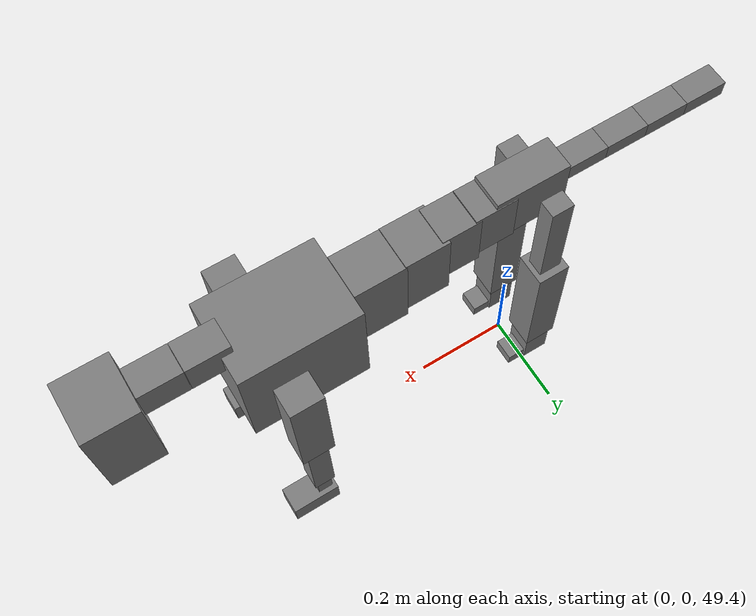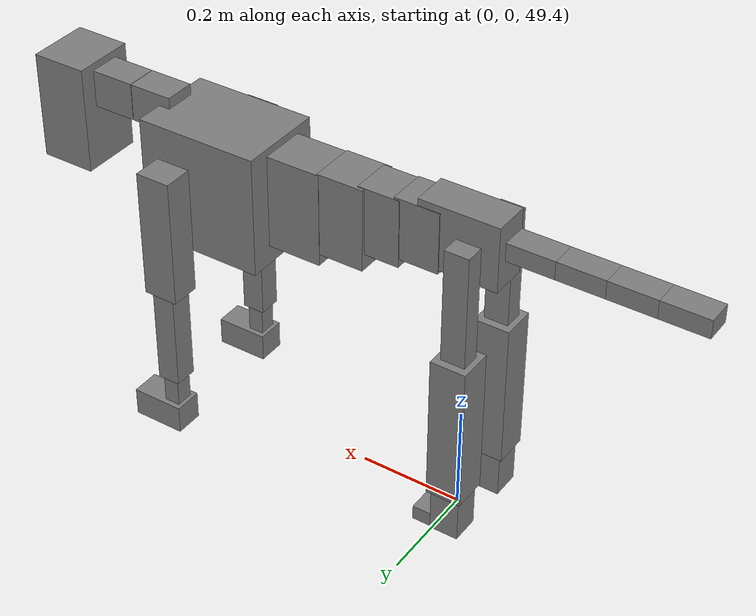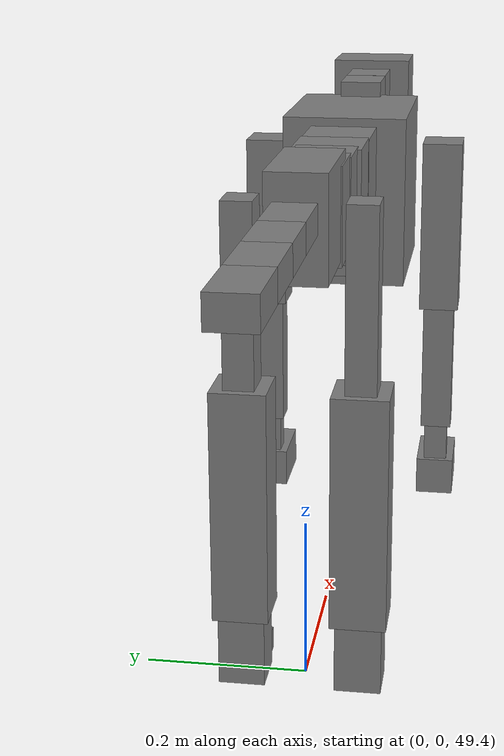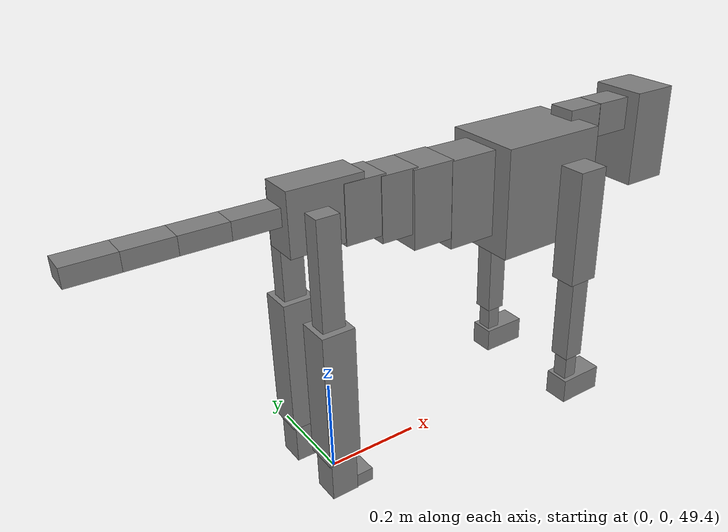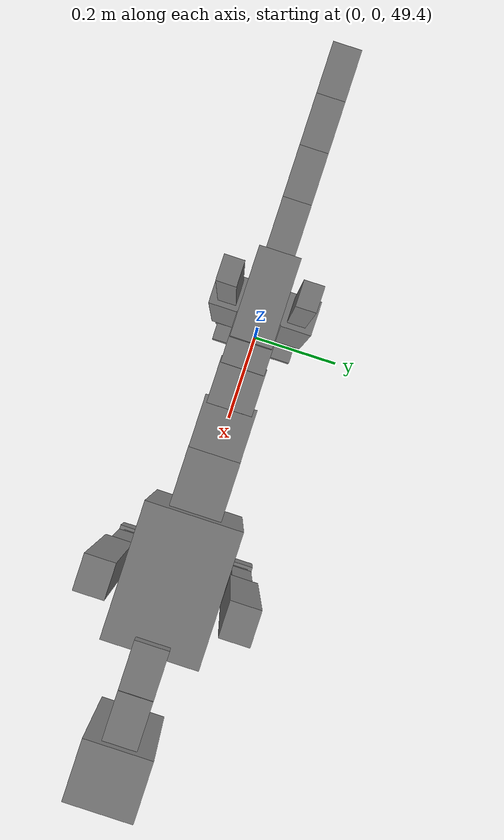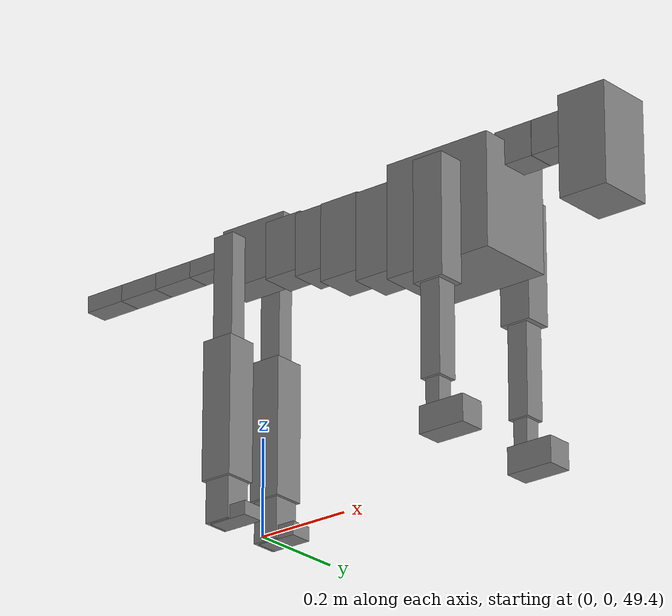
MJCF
<mujoco model="dog">

    <default>
        <joint armature="0.02" stiffness="1" damping="0.2" limited="true"/>
        <geom condim="3" friction="1 0.05 0.05" margin="0.01"/>
        <motor ctrllimited="true" ctrlrange="-1.0 1.0" forcelimited="true" gear="50"/>
    </default>

    <compiler inertiafromgeom="true" angle="radian"/>

    <option timestep="0.016" iterations="50" tolerance="1e-10" solver="Newton" jacobian="dense" cone="pyramidal"/>

    <size nconmax="20000" njmax="60000" nstack="5000000"/>
    <visual>
        <map force="0.1" zfar="30"/>
        <rgba haze="0.15 0.25 0.35 1"/>
        <quality shadowsize="2048"/>
        <global offwidth="800" offheight="800"/>
    </visual>

    <asset>
        <texture type="skybox" builtin="gradient" rgb1="0.3 0.5 0.7" rgb2="0 0 0" width="512" height="512"/>
        <texture name="texplane" type="2d" builtin="checker" rgb1=".2 .3 .4" rgb2=".1 0.15 0.2" width="512" height="512"
                 mark="cross" markrgb=".8 .8 .8"/>
        <texture name="texgeom" type="cube" builtin="flat" mark="cross" width="127" height="1278" rgb1="0.8 0.6 0.4"
                 rgb2="0.8 0.6 0.4" markrgb="1 1 1" random="0.01"/>

        <material name="matplane" reflectance="0.3" texture="texplane" texrepeat="1 1" texuniform="true"/>
        <material name="matgeom" texture="texgeom" texuniform="true" rgba="0.8 0.6 .4 1"/>
    </asset>

    <worldbody>
        <geom name="floor" pos="0 0 0" size="0 0 .25" type="plane" material="matplane" condim="3"/>

        <light directional="false" diffuse=".2 .2 .2" specular="0 0 0" pos="0 0 5" dir="0 0 -1" castshadow="false"/>
        <light mode="targetbodycom" target="torso" directional="false" diffuse=".8 .8 .8" specular="0.3 0.3 0.3"
               pos="0 0 4.0" dir="0 0 -1"/>

        <body name="root" pos="0 0 50">
            <freejoint name="root_1"/>
            <geom type="box" pos="0 0 -0.02" size="0.0774  0.0358  0.063" density="2030"/>

            <body name="spine1" pos="0.054 0 0">
                <joint name="spine1_y" axis="0 1 0" range="0 0.7" limited="true"/>
                <geom type="box" pos="0.02375 0 -0.03" size="0.04375  0.0375  0.05985" density="2030"/>

                <body name="spine2" pos="0.0612 0 0">
                    <joint name="spine2_y" axis="0 1 0" range="-0.15 0.15" limited="true"/>
                    <geom type="box" pos="0.03555  0  -0.04" size="0.04055  0.039  0.06615" density="2030"/>

                    <body name="spine3" pos="0.0730 0 0">
                        <joint name="spine3_y" axis="0 1 0" range="-0.15 0.15" limited="true"/>
                        <geom type="box" pos="0.03555  0  -0.057" size="0.04555  0.0445  0.081" density="2030"/>

                        <body name="spine4" pos="0.0780 0 0">
                            <joint name="spine4_y" axis="0 1 0" range="-0.15 0.15" limited="true"/>
                            <geom type="box" pos="0.05265  0  -0.07" size="0.05265  0.045  0.09135" density="2030"/>

                            <body name="torso" pos="0.1082 0 0">
                                <joint name="torso_y" axis="0 1 0" range="-0.15 0.15" limited="true"/>
                                <geom type="box" pos="0.11925  0  -0.085" size="0.11925  0.085  0.11745"
                                      density="2030"/>

                                <body name="neck1" pos="0.2160  0   0.0180">
                                    <joint name="neck1_y" axis="0 1 0" range="-1.2  -1" limited="true"/>
                                    <geom type="box" pos="0.0423  0  0" size="0.0423  0.03  0.036" density="2325"/>

                                    <body name="neck2" pos="0.0853  0  0">
                                        <joint name="neck2_y" axis="0 1 0" range="0.1  0" limited="true"/>
                                        <geom type="box" pos="0.0423  0  0" size="0.0423  0.03  0.036" density="2325"/>

                                        <body name="head" pos="0.0853  0  0">
                                            <joint name="head_y" axis="0 1 0" range="-0.3  -0.2" limited="true"/>
                                            <geom type="box" pos="0.0531  0  -0.055" size="0.0531  0.06  0.1044"
                                                  density="4030"/>

                                        </body>
                                    </body>
                                </body>

                                <body name="front_shoulder" pos="0.156  0   -0.0480">
                                    <joint name="front_shoulder_y" axis="0 1 0" range="-1 1.5" limited="true"/>
                                    <geom type="box" pos="0 0.13 -0.0981" size="0.0335  0.0286  0.1248" density="1158"/>
                                    <geom type="box" pos="0 -0.13 -0.0981" size="0.0335  0.0286  0.1248"
                                          density="1158"/>

                                    <body name="front_elbow" pos="0  0  -0.1963">
                                        <joint name="front_elbow_y" axis="0 1 0" range="-2 0" limited="true"/>
                                        <geom type="box" pos="0 0.13 -0.1086" size="0.0220  0.0225  0.1086"
                                              density="1081"/>
                                        <geom type="box" pos="0 -0.13 -0.1086" size="0.0220  0.0225  0.1086"
                                              density="1081"/>

                                        <body name="front_wrist" pos="0  0  -0.2172">
                                            <joint name="front_wrist_y" axis="0 1 0" range="-0.2 0" limited="true"/>
                                            <geom type="box" pos="0 0.13 -0.0350" size="0.0154  0.0171  0.0482"
                                                  density="1664"/>
                                            <geom type="box" pos="0 -0.13 -0.0350" size="0.0154  0.0171  0.0482"
                                                  density="1664"/>

                                            <body name="front_finger_end" pos="0  0  -0.0701">
                                                <joint name="front_finger_y" axis="0 1 0" range="-0.4 1"
                                                       limited="true"/>
                                                <geom type="box" pos="0.0275  0.13  -0.0123"
                                                      size="0.0504  0.0275  0.0273" density="1515"/>
                                                <geom type="box" pos="0.0275  -0.13  -0.0123"
                                                      size="0.0504  0.0275  0.0273" density="1515"/>

                                            </body>

                                        </body>
                                    </body>
                                </body>

                            </body>
                        </body>
                    </body>
                </body>
            </body>

            <body name="back_hip" pos="-0.03 0 -0.018">
                <joint name="back_hip_y" axis="0 1 0" range="-1.5 0.3" limited="true"/>
                <geom type="box" pos="0 0.07 -0.1065" size="0.0234  0.0184  0.1293" density="1154"/>
                <geom type="box" pos="0 -0.07 -0.1065" size="0.0234  0.0184  0.1293" density="1154"/>

                <body name="back_knee" pos="0  0  -0.2130">
                    <joint name="back_knee_y" axis="0 1 0" range="0 2.8" limited="true"/>
                    <geom type="box" pos="0 0.07 -0.1282" size="0.0341  0.0336  0.1437" density="1227"/>
                    <geom type="box" pos="0 -0.07 -0.1282" size="0.0341  0.0336  0.1437" density="1227"/>

                    <body name="back_ankle" pos="0  0  -0.2563">
                        <joint name="back_ankle_y" axis="0 1 0" range="-2.2 0" limited="true"/>
                        <geom type="box" pos="0 0.07 -0.0449" size="0.0279  0.0279  0.0562" density="1284"/>
                        <geom type="box" pos="0 -0.07 -0.0449" size="0.0279  0.0279  0.0562" density="1284"/>

                        <body name="back_toe_end" pos="0  0  -0.0899">
                            <joint name="back_toe_y" axis="0 1 0" range="-0.4 1" limited="true"/>
                            <geom type="box" pos="0.0234  0.07  0.0008" size="0.0428  0.0234  0.0142" density="1515"/>
                            <geom type="box" pos="0.0234  -0.07  0.0008" size="0.0428  0.0234  0.0142" density="1515"/>

                        </body>
                    </body>
                </body>
            </body>

            <body name="tail1" pos="-0.074 0 -0.006">
                <joint name="tail1_y" axis="0 1 0" range="-0.2 0.2" limited="true"/>
                <geom type="box" pos="-0.0536  0  0" size="0.045  0.025  0.0175" density="1587"/>

                <body name="tail2" pos="-0.09 0 0">
                    <joint name="tail2_y" axis="0 1 0" range="-0.2 0.2" limited="true"/>
                    <geom type="box" pos="-0.0536  0  0" size="0.045  0.025  0.0175" density="1587"/>

                    <body name="tail3" pos="-0.09 0 0">
                        <joint name="tail3_y" axis="0 1 0" range="-0.2 0.2" limited="true"/>
                        <geom type="box" pos="-0.0536  0  0" size="0.045  0.025  0.0175" density="1587"/>

                        <body name="tail4" pos="-0.09 0 0">
                            <joint name="tail4_y" axis="0 1 0" range="-0.2 0.2" limited="true"/>
                            <geom type="box" pos="-0.0536  0  0" size="0.045  0.025  0.0175" density="1587"/>

                        </body>
                    </body>
                </body>
            </body>
        </body>
    </worldbody>

    <actuator>
        <motor joint="spine1_y" forcerange="-150 150     "/>
        <motor joint="spine2_y" forcerange="-150 150     "/>
        <motor joint="spine3_y" forcerange="-150 150     "/>
        <motor joint="spine4_y" forcerange="-150 150     "/>
        <motor joint="torso_y" forcerange="-150 150     "/>
        <motor joint="neck1_y" forcerange="-100 100       "/>
        <motor joint="neck2_y" forcerange="-100 100       "/>
        <motor joint="head_y" forcerange="-150 150       "/>
        <motor joint="front_shoulder_y" forcerange="-151.05 139.69"/>
        <motor joint="front_elbow_y" forcerange="-141.91 121.45"/>
        <motor joint="front_wrist_y" forcerange="-55.70 81.23"/>
        <motor joint="front_finger_y" forcerange="-82.61 23.94"/>
        <motor joint="back_hip_y" forcerange="-204.42 240.38"/>
        <motor joint="back_knee_y" forcerange="-336.49 351.90"/>
        <motor joint="back_angle_y" forcerange="-113.62 232.55"/>
        <motor joint="back_toe_y" forcerange="-83.81 23.00"/>
        <motor joint="tail1_y" forcerange="-50 50     "/>
        <motor joint="tail2_y" forcerange="-50 50     "/>
        <motor joint="tail3_y" forcerange="-50 50     "/>
        <motor joint="tail4_y" forcerange="-50 50     "/>
    </actuator>
</mujoco>
